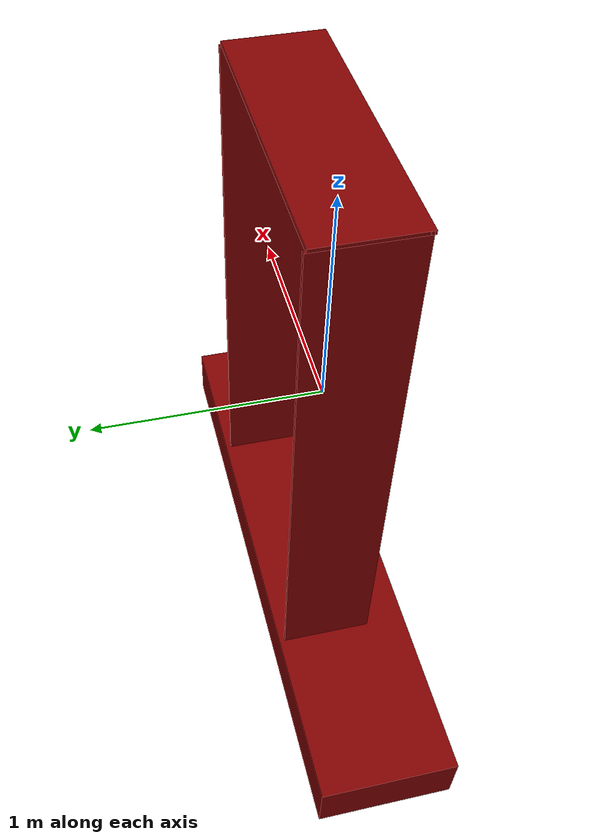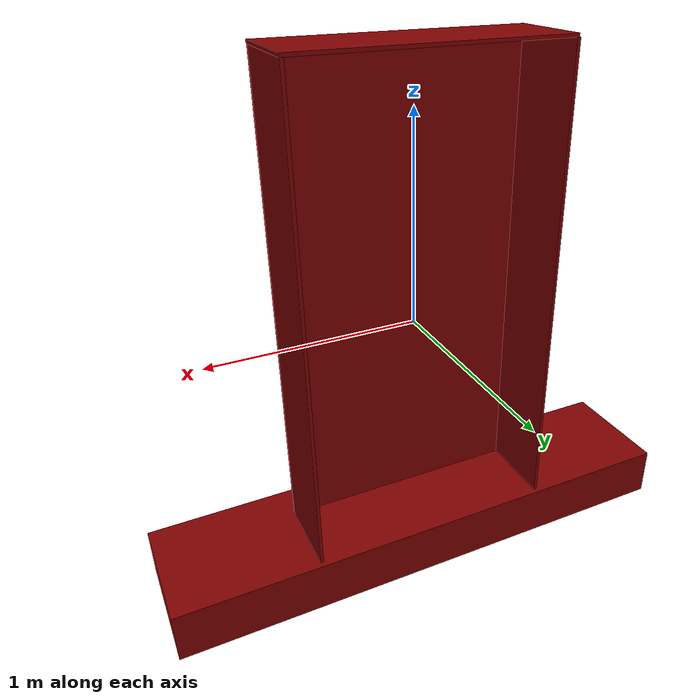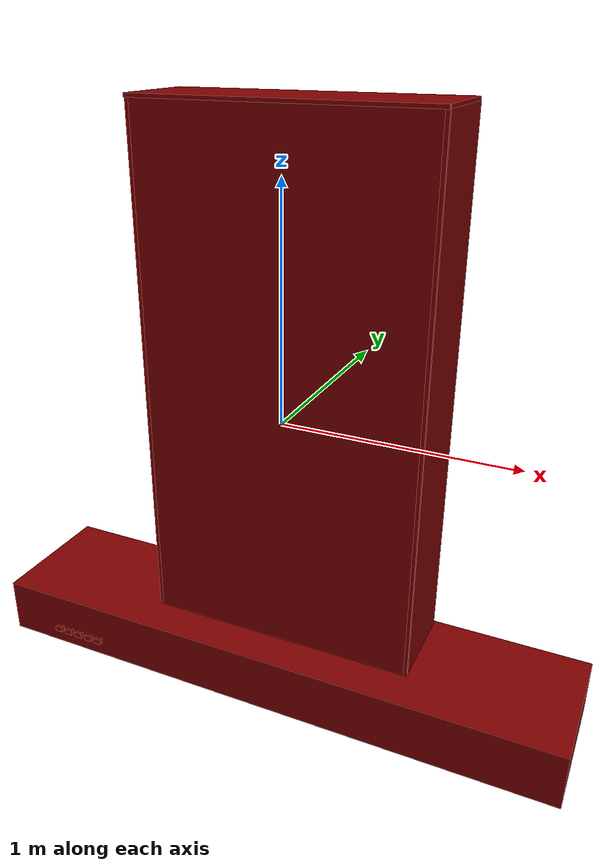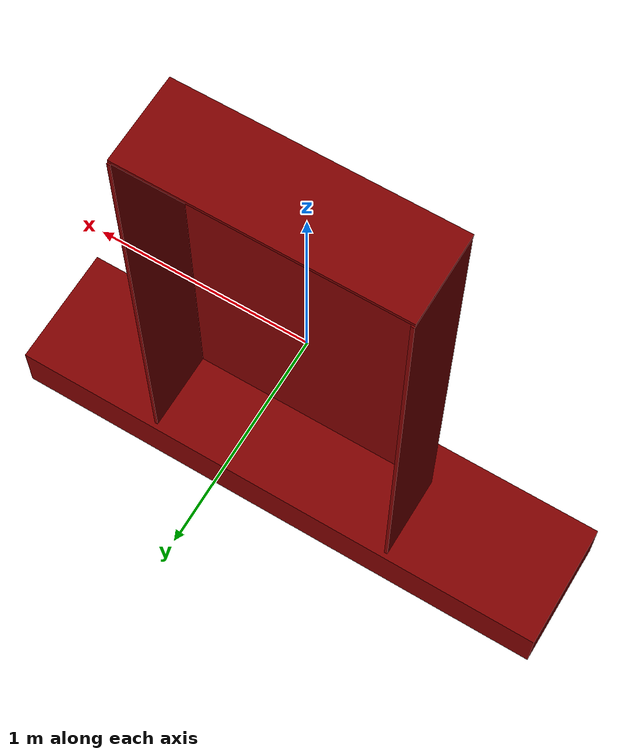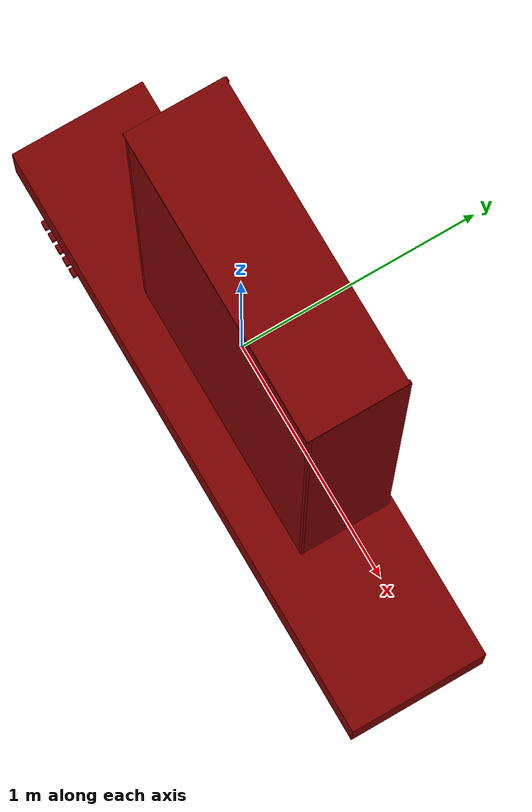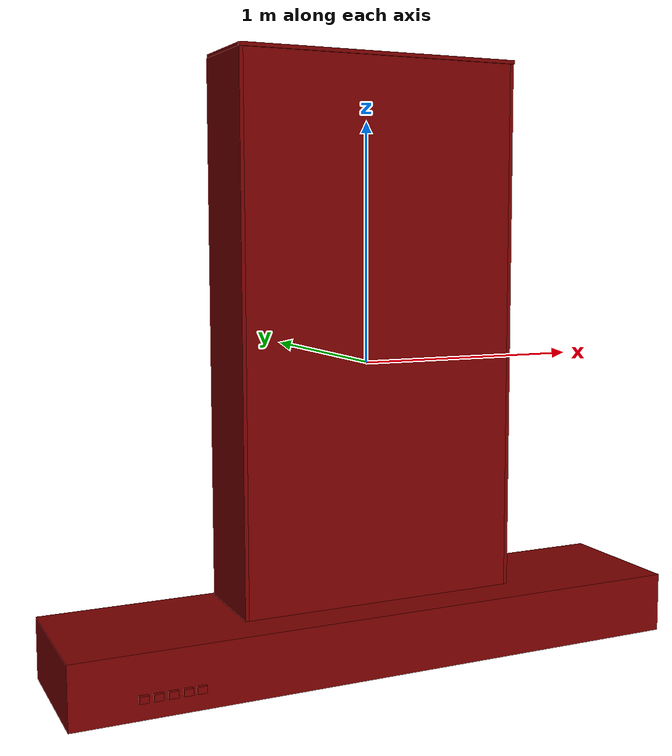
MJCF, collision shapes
<?xml version='1.0' encoding='UTF-8'?>
<mujoco model="model">
  <compiler angle="radian"/>
  <asset>
    <mesh file="visuals/Body001.obj" name="Body001_vis"/>
    <mesh file="visuals/Button001.obj" name="Button001_vis"/>
    <mesh file="visuals/Button002.obj" name="Button002_vis"/>
    <mesh file="visuals/Button003.obj" name="Button003_vis"/>
    <mesh file="visuals/Button004.obj" name="Button004_vis"/>
    <mesh file="visuals/Button005.obj" name="Button005_vis"/>
    <texture file="visuals/T_BC001.png" name="Body001_material" type="2d"/>
    <material name="Body001_material" rgba="1 1 1 1.0" texture="Body001_material" shininess="0.4472135901451111" specular="0.3103448502657381"/>
    <texture file="visuals/T_BC001.png" name="Button001_material" type="2d"/>
    <material name="Button001_material" rgba="1 1 1 1.0" texture="Button001_material" shininess="0.4472135901451111" specular="0.3103448502657381"/>
    <texture file="visuals/T_BC001.png" name="Button002_material" type="2d"/>
    <material name="Button002_material" rgba="1 1 1 1.0" texture="Button002_material" shininess="0.4472135901451111" specular="0.3103448502657381"/>
    <texture file="visuals/T_BC001.png" name="Button003_material" type="2d"/>
    <material name="Button003_material" rgba="1 1 1 1.0" texture="Button003_material" shininess="0.4472135901451111" specular="0.3103448502657381"/>
    <texture file="visuals/T_BC001.png" name="Button004_material" type="2d"/>
    <material name="Button004_material" rgba="1 1 1 1.0" texture="Button004_material" shininess="0.4472135901451111" specular="0.3103448502657381"/>
    <texture file="visuals/T_BC001.png" name="Button005_material" type="2d"/>
    <material name="Button005_material" rgba="1 1 1 1.0" texture="Button005_material" shininess="0.4472135901451111" specular="0.3103448502657381"/>
  </asset>
  <default>
    <default class="visual">
      <geom conaffinity="0" contype="0" group="1" type="mesh"/>
    </default>
    <default class="collision">
      <geom group="0" rgba="0.5 0 0 0.5"/>
    </default>
    <default class="spawn">
      <geom group="0" rgba="1 1 1 0.5" contype="0" conaffinity="0"/>
      <site group="0" rgba="1 1 1 0.5"/>
    </default>
    <default class="region">
      <geom group="1" conaffinity="0" contype="0" rgba="0 1 0 0"/>
    </default>
  </default>
  <worldbody>
    <body>
      <body name="object">
        <geom mesh="Body001_vis" type="mesh" solimp="0.998 0.998 0.001" solref="0.001 1" density="100" friction="0.95 0.3 0.1" class="visual" material="Body001_material"/>
        <geom class="collision" type="box" pos="0.634100 0.089342 0.116581" size="0.008033919148147106 0.20049241185188293 1.1441386938095093" quat="1.0 0.0 0.0 0.0"/>
        <geom class="collision" type="box" pos="0.024618 -0.105310 0.123454" size="0.6175161004066467 0.005839950405061245 1.1514183282852173" quat="1.0 0.0 0.0 0.0"/>
        <geom class="collision" type="box" pos="-0.585461 0.089342 0.116581" size="0.008033919148147106 0.20049241185188293 1.1441386938095093" quat="1.0 0.0 0.0 0.0"/>
        <geom class="collision" type="box" pos="0.024618 0.082027 1.267144" size="0.6175161004066467 0.20049241185188293 0.00772908516228199" quat="1.0 0.0 0.0 0.0"/>
        <geom class="collision" type="box" pos="0.000000 0.011926 -1.144423" size="1.348383903503418 0.30271926522254944 0.1304507851600647" quat="1.0 0.0 0.0 0.0"/>
        <body name="Button001">
          <joint axis="0.0 1.0 0.0" pos="-1.067825 -0.305865 -1.186057" limited="true" name="Button001_joint" range="0.0 0.003" type="slide" damping="1" frictionloss="1" armature=".01" stiffness="0.05"/>
          <geom mesh="Button001_vis" type="mesh" solimp="0.998 0.998 0.001" solref="0.001 1" density="100" friction="0.95 0.3 0.1" class="visual" material="Button001_material"/>
          <geom class="collision" type="box" pos="-1.067726 -0.306731 -1.185854" size="0.018816644325852394 0.00872437097132206 0.013986878097057343" quat="1.0 0.0 0.0 0.0"/>
        </body>
        <body name="Button002">
          <joint axis="0.0 1.0 0.0" pos="-1.011104 -0.305865 -1.186057" limited="true" name="Button002_joint" range="0.0 0.003" type="slide" damping="1" frictionloss="1" armature=".01" stiffness="0.05"/>
          <geom mesh="Button002_vis" type="mesh" solimp="0.998 0.998 0.001" solref="0.001 1" density="100" friction="0.95 0.3 0.1" class="visual" material="Button002_material"/>
          <geom class="collision" type="box" pos="-1.010973 -0.306731 -1.185854" size="0.018816644325852394 0.00872437097132206 0.013986878097057343" quat="1.0 0.0 0.0 0.0"/>
        </body>
        <body name="Button003">
          <joint axis="0.0 1.0 0.0" pos="-0.952807 -0.305865 -1.186057" limited="true" name="Button003_joint" range="0.0 0.003" type="slide" damping="1" frictionloss="1" armature=".01" stiffness="0.05"/>
          <geom mesh="Button003_vis" type="mesh" solimp="0.998 0.998 0.001" solref="0.001 1" density="100" friction="0.95 0.3 0.1" class="visual" material="Button003_material"/>
          <geom class="collision" type="box" pos="-0.952618 -0.306731 -1.185854" size="0.018816644325852394 0.00872437097132206 0.013986878097057343" quat="1.0 0.0 0.0 0.0"/>
        </body>
        <body name="Button004">
          <joint axis="0.0 1.0 0.0" pos="-0.894703 -0.305865 -1.186057" limited="true" name="Button004_joint" range="0.0 0.003" type="slide" damping="1" frictionloss="1" armature=".01" stiffness="0.05"/>
          <geom mesh="Button004_vis" type="mesh" solimp="0.998 0.998 0.001" solref="0.001 1" density="100" friction="0.95 0.3 0.1" class="visual" material="Button004_material"/>
          <geom class="collision" type="box" pos="-0.894410 -0.306731 -1.185854" size="0.018816644325852394 0.00872437097132206 0.013986878097057343" quat="1.0 0.0 0.0 0.0"/>
        </body>
        <body name="Button005">
          <joint axis="0.0 1.0 0.0" pos="-0.840512 -0.305865 -1.186057" limited="true" name="Button005_joint" range="0.0 0.003" type="slide" damping="1" frictionloss="1" armature=".01" stiffness="0.05"/>
          <geom mesh="Button005_vis" type="mesh" solimp="0.998 0.998 0.001" solref="0.001 1" density="100" friction="0.95 0.3 0.1" class="visual" material="Button005_material"/>
          <geom class="collision" type="box" pos="-0.840421 -0.306731 -1.185854" size="0.018816644325852394 0.00872437097132206 0.013986878097057343" quat="1.0 0.0 0.0 0.0"/>
        </body>
        <geom class="region" name="reg_main" type="box" pos="0.00040399999999995995 0.0005565000000000153 0.003546999999999967" size="1.343547 0.3148995 1.270971"/>
      </body>
    </body>
  </worldbody>
  <actuator>
    <motor name="Button001_joint_actuator" joint="Button001_joint" gear="0.5"/>
    <motor name="Button002_joint_actuator" joint="Button002_joint" gear="0.5"/>
    <motor name="Button003_joint_actuator" joint="Button003_joint" gear="0.5"/>
    <motor name="Button004_joint_actuator" joint="Button004_joint" gear="0.5"/>
    <motor name="Button005_joint_actuator" joint="Button005_joint" gear="0.5"/>
  </actuator>
</mujoco>
